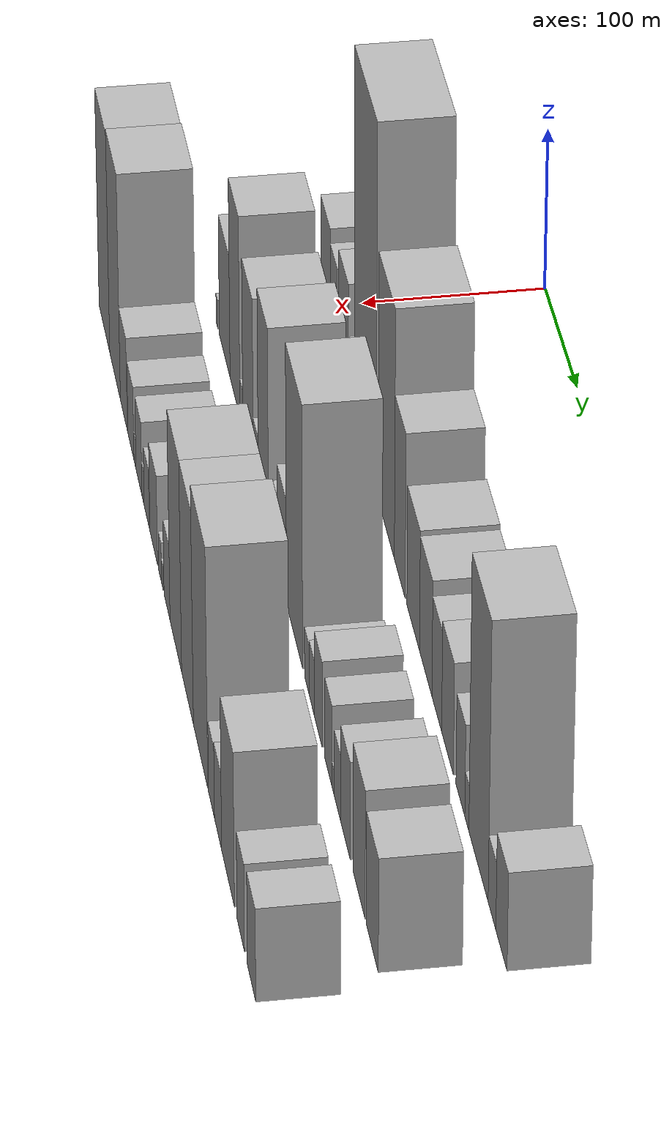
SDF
<sdf version="1.6">
 <world name="default">
  <model name="building_20">
   <static>1</static>
   <pose>100.0000 1.1828 0 0.000000 0.000000 0.000000</pose>
   <link name="link">
    <pose>0 0 30.00 0 0 0</pose>
    <collision name="collision"><geometry><box><size>40.0000 35.6672 60.0000</size></box></geometry></collision>
    <visual name="visual">
     <cast_shadows>0</cast_shadows>
     <geometry><box><size>40.0000 35.6672 60.0000</size></box></geometry>
     <material>
      <script>
       <uri>model://HANNAS_wall/materials/scripts</uri>
       <uri>model://HANNAS_wall/materials/textures</uri>
       <name>vrc/HANNAS_wall</name>
      </script>
     </material>
    </visual>
   </link>
  </model>
  <model name="building_21">
   <static>1</static>
   <pose>100.0000 32.1808 0 0.000000 0.000000 0.000000</pose>
   <link name="link">
    <pose>0 0 25.50 0 0 0</pose>
    <collision name="collision"><geometry><box><size>40.0000 26.3290 51.0000</size></box></geometry></collision>
    <visual name="visual">
     <cast_shadows>0</cast_shadows>
     <geometry><box><size>40.0000 26.3290 51.0000</size></box></geometry>
     <material>
      <script>
       <uri>model://HANNAS_wall/materials/scripts</uri>
       <uri>model://HANNAS_wall/materials/textures</uri>
       <name>vrc/HANNAS_wall</name>
      </script>
     </material>
    </visual>
   </link>
  </model>
  <model name="building_22">
   <static>1</static>
   <pose>100.0000 67.8488 0 0.000000 0.000000 0.000000</pose>
   <link name="link">
    <pose>0 0 33.00 0 0 0</pose>
    <collision name="collision"><geometry><box><size>40.0000 35.0070 66.0000</size></box></geometry></collision>
    <visual name="visual">
     <cast_shadows>0</cast_shadows>
     <geometry><box><size>40.0000 35.0070 66.0000</size></box></geometry>
     <material>
      <script>
       <uri>model://HANNAS_wall/materials/scripts</uri>
       <uri>model://HANNAS_wall/materials/textures</uri>
       <name>vrc/HANNAS_wall</name>
      </script>
     </material>
    </visual>
   </link>
  </model>
  <model name="building_23">
   <static>1</static>
   <pose>100.0000 97.4326 0 0.000000 0.000000 0.000000</pose>
   <link name="link">
    <pose>0 0 18.00 0 0 0</pose>
    <collision name="collision"><geometry><box><size>40.0000 18.1607 36.0000</size></box></geometry></collision>
    <visual name="visual">
     <cast_shadows>0</cast_shadows>
     <geometry><box><size>40.0000 18.1607 36.0000</size></box></geometry>
     <material>
      <script>
       <uri>model://HANNAS_wall/materials/scripts</uri>
       <uri>model://HANNAS_wall/materials/textures</uri>
       <name>vrc/HANNAS_wall</name>
      </script>
     </material>
    </visual>
   </link>
  </model>
  <model name="building_24">
   <static>1</static>
   <pose>100.0000 145.5069 0 0.000000 0.000000 0.000000</pose>
   <link name="link">
    <pose>0 0 111.00 0 0 0</pose>
    <collision name="collision"><geometry><box><size>40.0000 77.9878 222.0000</size></box></geometry></collision>
    <visual name="visual">
     <cast_shadows>0</cast_shadows>
     <geometry><box><size>40.0000 77.9878 222.0000</size></box></geometry>
     <material>
      <script>
       <uri>model://HANNAS_wall/materials/scripts</uri>
       <uri>model://HANNAS_wall/materials/textures</uri>
       <name>vrc/HANNAS_wall</name>
      </script>
     </material>
    </visual>
   </link>
  </model>
  <model name="building_25">
   <static>1</static>
   <pose>100.0000 218.3089 0 0.000000 0.000000 0.000000</pose>
   <link name="link">
    <pose>0 0 75.00 0 0 0</pose>
    <collision name="collision"><geometry><box><size>40.0000 55.6163 150.0000</size></box></geometry></collision>
    <visual name="visual">
     <cast_shadows>0</cast_shadows>
     <geometry><box><size>40.0000 55.6163 150.0000</size></box></geometry>
     <material>
      <script>
       <uri>model://HANNAS_wall/materials/scripts</uri>
       <uri>model://HANNAS_wall/materials/textures</uri>
       <name>vrc/HANNAS_wall</name>
      </script>
     </material>
    </visual>
   </link>
  </model>
  <model name="building_26">
   <static>1</static>
   <pose>100.0000 264.1059 0 0.000000 0.000000 0.000000</pose>
   <link name="link">
    <pose>0 0 49.50 0 0 0</pose>
    <collision name="collision"><geometry><box><size>40.0000 35.9778 99.0000</size></box></geometry></collision>
    <visual name="visual">
     <cast_shadows>0</cast_shadows>
     <geometry><box><size>40.0000 35.9778 99.0000</size></box></geometry>
     <material>
      <script>
       <uri>model://HANNAS_wall/materials/scripts</uri>
       <uri>model://HANNAS_wall/materials/textures</uri>
       <name>vrc/HANNAS_wall</name>
      </script>
     </material>
    </visual>
   </link>
  </model>
  <model name="building_27">
   <static>1</static>
   <pose>100.0000 308.7166 0 0.000000 0.000000 0.000000</pose>
   <link name="link">
    <pose>0 0 36.00 0 0 0</pose>
    <collision name="collision"><geometry><box><size>40.0000 41.2436 72.0000</size></box></geometry></collision>
    <visual name="visual">
     <cast_shadows>0</cast_shadows>
     <geometry><box><size>40.0000 41.2436 72.0000</size></box></geometry>
     <material>
      <script>
       <uri>model://HANNAS_wall/materials/scripts</uri>
       <uri>model://HANNAS_wall/materials/textures</uri>
       <name>vrc/HANNAS_wall</name>
      </script>
     </material>
    </visual>
   </link>
  </model>
  <model name="building_28">
   <static>1</static>
   <pose>100.0000 349.4230 0 0.000000 0.000000 0.000000</pose>
   <link name="link">
    <pose>0 0 34.50 0 0 0</pose>
    <collision name="collision"><geometry><box><size>40.0000 40.1692 69.0000</size></box></geometry></collision>
    <visual name="visual">
     <cast_shadows>0</cast_shadows>
     <geometry><box><size>40.0000 40.1692 69.0000</size></box></geometry>
     <material>
      <script>
       <uri>model://HANNAS_wall/materials/scripts</uri>
       <uri>model://HANNAS_wall/materials/textures</uri>
       <name>vrc/HANNAS_wall</name>
      </script>
     </material>
    </visual>
   </link>
  </model>
  <model name="building_29">
   <static>1</static>
   <pose>100.0000 384.8734 0 0.000000 0.000000 0.000000</pose>
   <link name="link">
    <pose>0 0 30.00 0 0 0</pose>
    <collision name="collision"><geometry><box><size>40.0000 30.7317 60.0000</size></box></geometry></collision>
    <visual name="visual">
     <cast_shadows>0</cast_shadows>
     <geometry><box><size>40.0000 30.7317 60.0000</size></box></geometry>
     <material>
      <script>
       <uri>model://HANNAS_wall/materials/scripts</uri>
       <uri>model://HANNAS_wall/materials/textures</uri>
       <name>vrc/HANNAS_wall</name>
      </script>
     </material>
    </visual>
   </link>
  </model>
  <model name="building_30">
   <static>1</static>
   <pose>100.0000 418.5343 0 0.000000 0.000000 0.000000</pose>
   <link name="link">
    <pose>0 0 33.00 0 0 0</pose>
    <collision name="collision"><geometry><box><size>40.0000 36.5901 66.0000</size></box></geometry></collision>
    <visual name="visual">
     <cast_shadows>0</cast_shadows>
     <geometry><box><size>40.0000 36.5901 66.0000</size></box></geometry>
     <material>
      <script>
       <uri>model://HANNAS_wall/materials/scripts</uri>
       <uri>model://HANNAS_wall/materials/textures</uri>
       <name>vrc/HANNAS_wall</name>
      </script>
     </material>
    </visual>
   </link>
  </model>
  <model name="building_31">
   <static>1</static>
   <pose>100.0000 458.3467 0 0.000000 0.000000 0.000000</pose>
   <link name="link">
    <pose>0 0 27.00 0 0 0</pose>
    <collision name="collision"><geometry><box><size>40.0000 27.0347 54.0000</size></box></geometry></collision>
    <visual name="visual">
     <cast_shadows>0</cast_shadows>
     <geometry><box><size>40.0000 27.0347 54.0000</size></box></geometry>
     <material>
      <script>
       <uri>model://HANNAS_wall/materials/scripts</uri>
       <uri>model://HANNAS_wall/materials/textures</uri>
       <name>vrc/HANNAS_wall</name>
      </script>
     </material>
    </visual>
   </link>
  </model>
  <model name="building_32">
   <static>1</static>
   <pose>100.0000 478.0838 0 0.000000 0.000000 0.000000</pose>
   <link name="link">
    <pose>0 0 13.50 0 0 0</pose>
    <collision name="collision"><geometry><box><size>40.0000 12.4395 27.0000</size></box></geometry></collision>
    <visual name="visual">
     <cast_shadows>0</cast_shadows>
     <geometry><box><size>40.0000 12.4395 27.0000</size></box></geometry>
     <material>
      <script>
       <uri>model://HANNAS_wall/materials/scripts</uri>
       <uri>model://HANNAS_wall/materials/textures</uri>
       <name>vrc/HANNAS_wall</name>
      </script>
     </material>
    </visual>
   </link>
  </model>
  <model name="building_33">
   <static>1</static>
   <pose>100.0000 513.0202 0 0.000000 0.000000 0.000000</pose>
   <link name="link">
    <pose>0 0 81.00 0 0 0</pose>
    <collision name="collision"><geometry><box><size>40.0000 57.4334 162.0000</size></box></geometry></collision>
    <visual name="visual">
     <cast_shadows>0</cast_shadows>
     <geometry><box><size>40.0000 57.4334 162.0000</size></box></geometry>
     <material>
      <script>
       <uri>model://HANNAS_wall/materials/scripts</uri>
       <uri>model://HANNAS_wall/materials/textures</uri>
       <name>vrc/HANNAS_wall</name>
      </script>
     </material>
    </visual>
   </link>
  </model>
  <model name="building_34">
   <static>1</static>
   <pose>100.0000 553.0574 0 0.000000 0.000000 0.000000</pose>
   <link name="link">
    <pose>0 0 19.50 0 0 0</pose>
    <collision name="collision"><geometry><box><size>40.0000 22.6411 39.0000</size></box></geometry></collision>
    <visual name="visual">
     <cast_shadows>0</cast_shadows>
     <geometry><box><size>40.0000 22.6411 39.0000</size></box></geometry>
     <material>
      <script>
       <uri>model://HANNAS_wall/materials/scripts</uri>
       <uri>model://HANNAS_wall/materials/textures</uri>
       <name>vrc/HANNAS_wall</name>
      </script>
     </material>
    </visual>
   </link>
  </model>
  <model name="building_35">
   <static>1</static>
   <pose>100.0000 580.5627 0 0.000000 0.000000 0.000000</pose>
   <link name="link">
    <pose>0 0 28.50 0 0 0</pose>
    <collision name="collision"><geometry><box><size>40.0000 32.3694 57.0000</size></box></geometry></collision>
    <visual name="visual">
     <cast_shadows>0</cast_shadows>
     <geometry><box><size>40.0000 32.3694 57.0000</size></box></geometry>
     <material>
      <script>
       <uri>model://HANNAS_wall/materials/scripts</uri>
       <uri>model://HANNAS_wall/materials/textures</uri>
       <name>vrc/HANNAS_wall</name>
      </script>
     </material>
    </visual>
   </link>
  </model>
  <model name="building_55">
   <static>1</static>
   <pose>160.0000 10.9265 0 0.000000 0.000000 0.000000</pose>
   <link name="link">
    <pose>0 0 9.00 0 0 0</pose>
    <collision name="collision"><geometry><box><size>40.0000 7.2422 18.0000</size></box></geometry></collision>
    <visual name="visual">
     <cast_shadows>0</cast_shadows>
     <geometry><box><size>40.0000 7.2422 18.0000</size></box></geometry>
     <material>
      <script>
       <uri>model://HANNAS_wall/materials/scripts</uri>
       <uri>model://HANNAS_wall/materials/textures</uri>
       <name>vrc/HANNAS_wall</name>
      </script>
     </material>
    </visual>
   </link>
  </model>
  <model name="building_56">
   <static>1</static>
   <pose>160.0000 41.9726 0 0.000000 0.000000 0.000000</pose>
   <link name="link">
    <pose>0 0 37.50 0 0 0</pose>
    <collision name="collision"><geometry><box><size>40.0000 42.8500 75.0000</size></box></geometry></collision>
    <visual name="visual">
     <cast_shadows>0</cast_shadows>
     <geometry><box><size>40.0000 42.8500 75.0000</size></box></geometry>
     <material>
      <script>
       <uri>model://HANNAS_wall/materials/scripts</uri>
       <uri>model://HANNAS_wall/materials/textures</uri>
       <name>vrc/HANNAS_wall</name>
      </script>
     </material>
    </visual>
   </link>
  </model>
  <model name="building_57">
   <static>1</static>
   <pose>160.0000 83.0581 0 0.000000 0.000000 0.000000</pose>
   <link name="link">
    <pose>0 0 61.50 0 0 0</pose>
    <collision name="collision"><geometry><box><size>40.0000 39.3210 123.0000</size></box></geometry></collision>
    <visual name="visual">
     <cast_shadows>0</cast_shadows>
     <geometry><box><size>40.0000 39.3210 123.0000</size></box></geometry>
     <material>
      <script>
       <uri>model://HANNAS_wall/materials/scripts</uri>
       <uri>model://HANNAS_wall/materials/textures</uri>
       <name>vrc/HANNAS_wall</name>
      </script>
     </material>
    </visual>
   </link>
  </model>
  <model name="building_58">
   <static>1</static>
   <pose>160.0000 108.4685 0 0.000000 0.000000 0.000000</pose>
   <link name="link">
    <pose>0 0 12.00 0 0 0</pose>
    <collision name="collision"><geometry><box><size>40.0000 11.4999 24.0000</size></box></geometry></collision>
    <visual name="visual">
     <cast_shadows>0</cast_shadows>
     <geometry><box><size>40.0000 11.4999 24.0000</size></box></geometry>
     <material>
      <script>
       <uri>model://HANNAS_wall/materials/scripts</uri>
       <uri>model://HANNAS_wall/materials/textures</uri>
       <name>vrc/HANNAS_wall</name>
      </script>
     </material>
    </visual>
   </link>
  </model>
  <model name="building_59">
   <static>1</static>
   <pose>160.0000 134.5916 0 0.000000 0.000000 0.000000</pose>
   <link name="link">
    <pose>0 0 52.50 0 0 0</pose>
    <collision name="collision"><geometry><box><size>40.0000 40.7462 105.0000</size></box></geometry></collision>
    <visual name="visual">
     <cast_shadows>0</cast_shadows>
     <geometry><box><size>40.0000 40.7462 105.0000</size></box></geometry>
     <material>
      <script>
       <uri>model://HANNAS_wall/materials/scripts</uri>
       <uri>model://HANNAS_wall/materials/textures</uri>
       <name>vrc/HANNAS_wall</name>
      </script>
     </material>
    </visual>
   </link>
  </model>
  <model name="building_60">
   <static>1</static>
   <pose>160.0000 164.3104 0 0.000000 0.000000 0.000000</pose>
   <link name="link">
    <pose>0 0 16.50 0 0 0</pose>
    <collision name="collision"><geometry><box><size>40.0000 18.6914 33.0000</size></box></geometry></collision>
    <visual name="visual">
     <cast_shadows>0</cast_shadows>
     <geometry><box><size>40.0000 18.6914 33.0000</size></box></geometry>
     <material>
      <script>
       <uri>model://HANNAS_wall/materials/scripts</uri>
       <uri>model://HANNAS_wall/materials/textures</uri>
       <name>vrc/HANNAS_wall</name>
      </script>
     </material>
    </visual>
   </link>
  </model>
  <model name="building_61">
   <static>1</static>
   <pose>160.0000 192.9770 0 0.000000 0.000000 0.000000</pose>
   <link name="link">
    <pose>0 0 61.50 0 0 0</pose>
    <collision name="collision"><geometry><box><size>40.0000 38.6419 123.0000</size></box></geometry></collision>
    <visual name="visual">
     <cast_shadows>0</cast_shadows>
     <geometry><box><size>40.0000 38.6419 123.0000</size></box></geometry>
     <material>
      <script>
       <uri>model://HANNAS_wall/materials/scripts</uri>
       <uri>model://HANNAS_wall/materials/textures</uri>
       <name>vrc/HANNAS_wall</name>
      </script>
     </material>
    </visual>
   </link>
  </model>
  <model name="building_62">
   <static>1</static>
   <pose>160.0000 218.0030 0 0.000000 0.000000 0.000000</pose>
   <link name="link">
    <pose>0 0 13.50 0 0 0</pose>
    <collision name="collision"><geometry><box><size>40.0000 11.4101 27.0000</size></box></geometry></collision>
    <visual name="visual">
     <cast_shadows>0</cast_shadows>
     <geometry><box><size>40.0000 11.4101 27.0000</size></box></geometry>
     <material>
      <script>
       <uri>model://HANNAS_wall/materials/scripts</uri>
       <uri>model://HANNAS_wall/materials/textures</uri>
       <name>vrc/HANNAS_wall</name>
      </script>
     </material>
    </visual>
   </link>
  </model>
  <model name="building_63">
   <static>1</static>
   <pose>160.0000 234.6212 0 0.000000 0.000000 0.000000</pose>
   <link name="link">
    <pose>0 0 19.50 0 0 0</pose>
    <collision name="collision"><geometry><box><size>40.0000 21.8263 39.0000</size></box></geometry></collision>
    <visual name="visual">
     <cast_shadows>0</cast_shadows>
     <geometry><box><size>40.0000 21.8263 39.0000</size></box></geometry>
     <material>
      <script>
       <uri>model://HANNAS_wall/materials/scripts</uri>
       <uri>model://HANNAS_wall/materials/textures</uri>
       <name>vrc/HANNAS_wall</name>
      </script>
     </material>
    </visual>
   </link>
  </model>
  <model name="building_64">
   <static>1</static>
   <pose>160.0000 262.1242 0 0.000000 0.000000 0.000000</pose>
   <link name="link">
    <pose>0 0 31.50 0 0 0</pose>
    <collision name="collision"><geometry><box><size>40.0000 33.1797 63.0000</size></box></geometry></collision>
    <visual name="visual">
     <cast_shadows>0</cast_shadows>
     <geometry><box><size>40.0000 33.1797 63.0000</size></box></geometry>
     <material>
      <script>
       <uri>model://HANNAS_wall/materials/scripts</uri>
       <uri>model://HANNAS_wall/materials/textures</uri>
       <name>vrc/HANNAS_wall</name>
      </script>
     </material>
    </visual>
   </link>
  </model>
  <model name="building_65">
   <static>1</static>
   <pose>160.0000 307.4995 0 0.000000 0.000000 0.000000</pose>
   <link name="link">
    <pose>0 0 78.00 0 0 0</pose>
    <collision name="collision"><geometry><box><size>40.0000 57.5708 156.0000</size></box></geometry></collision>
    <visual name="visual">
     <cast_shadows>0</cast_shadows>
     <geometry><box><size>40.0000 57.5708 156.0000</size></box></geometry>
     <material>
      <script>
       <uri>model://HANNAS_wall/materials/scripts</uri>
       <uri>model://HANNAS_wall/materials/textures</uri>
       <name>vrc/HANNAS_wall</name>
      </script>
     </material>
    </visual>
   </link>
  </model>
  <model name="building_66">
   <static>1</static>
   <pose>160.0000 351.3221 0 0.000000 0.000000 0.000000</pose>
   <link name="link">
    <pose>0 0 15.00 0 0 0</pose>
    <collision name="collision"><geometry><box><size>40.0000 16.0744 30.0000</size></box></geometry></collision>
    <visual name="visual">
     <cast_shadows>0</cast_shadows>
     <geometry><box><size>40.0000 16.0744 30.0000</size></box></geometry>
     <material>
      <script>
       <uri>model://HANNAS_wall/materials/scripts</uri>
       <uri>model://HANNAS_wall/materials/textures</uri>
       <name>vrc/HANNAS_wall</name>
      </script>
     </material>
    </visual>
   </link>
  </model>
  <model name="building_67">
   <static>1</static>
   <pose>160.0000 368.9532 0 0.000000 0.000000 0.000000</pose>
   <link name="link">
    <pose>0 0 16.50 0 0 0</pose>
    <collision name="collision"><geometry><box><size>40.0000 19.1877 33.0000</size></box></geometry></collision>
    <visual name="visual">
     <cast_shadows>0</cast_shadows>
     <geometry><box><size>40.0000 19.1877 33.0000</size></box></geometry>
     <material>
      <script>
       <uri>model://HANNAS_wall/materials/scripts</uri>
       <uri>model://HANNAS_wall/materials/textures</uri>
       <name>vrc/HANNAS_wall</name>
      </script>
     </material>
    </visual>
   </link>
  </model>
  <model name="building_68">
   <static>1</static>
   <pose>160.0000 391.6664 0 0.000000 0.000000 0.000000</pose>
   <link name="link">
    <pose>0 0 25.50 0 0 0</pose>
    <collision name="collision"><geometry><box><size>40.0000 26.2389 51.0000</size></box></geometry></collision>
    <visual name="visual">
     <cast_shadows>0</cast_shadows>
     <geometry><box><size>40.0000 26.2389 51.0000</size></box></geometry>
     <material>
      <script>
       <uri>model://HANNAS_wall/materials/scripts</uri>
       <uri>model://HANNAS_wall/materials/textures</uri>
       <name>vrc/HANNAS_wall</name>
      </script>
     </material>
    </visual>
   </link>
  </model>
  <model name="building_69">
   <static>1</static>
   <pose>160.0000 426.0235 0 0.000000 0.000000 0.000000</pose>
   <link name="link">
    <pose>0 0 24.00 0 0 0</pose>
    <collision name="collision"><geometry><box><size>40.0000 24.4752 48.0000</size></box></geometry></collision>
    <visual name="visual">
     <cast_shadows>0</cast_shadows>
     <geometry><box><size>40.0000 24.4752 48.0000</size></box></geometry>
     <material>
      <script>
       <uri>model://HANNAS_wall/materials/scripts</uri>
       <uri>model://HANNAS_wall/materials/textures</uri>
       <name>vrc/HANNAS_wall</name>
      </script>
     </material>
    </visual>
   </link>
  </model>
  <model name="building_70">
   <static>1</static>
   <pose>160.0000 441.8952 0 0.000000 0.000000 0.000000</pose>
   <link name="link">
    <pose>0 0 7.50 0 0 0</pose>
    <collision name="collision"><geometry><box><size>40.0000 7.2681 15.0000</size></box></geometry></collision>
    <visual name="visual">
     <cast_shadows>0</cast_shadows>
     <geometry><box><size>40.0000 7.2681 15.0000</size></box></geometry>
     <material>
      <script>
       <uri>model://HANNAS_wall/materials/scripts</uri>
       <uri>model://HANNAS_wall/materials/textures</uri>
       <name>vrc/HANNAS_wall</name>
      </script>
     </material>
    </visual>
   </link>
  </model>
  <model name="building_71">
   <static>1</static>
   <pose>160.0000 456.3640 0 0.000000 0.000000 0.000000</pose>
   <link name="link">
    <pose>0 0 19.50 0 0 0</pose>
    <collision name="collision"><geometry><box><size>40.0000 21.6695 39.0000</size></box></geometry></collision>
    <visual name="visual">
     <cast_shadows>0</cast_shadows>
     <geometry><box><size>40.0000 21.6695 39.0000</size></box></geometry>
     <material>
      <script>
       <uri>model://HANNAS_wall/materials/scripts</uri>
       <uri>model://HANNAS_wall/materials/textures</uri>
       <name>vrc/HANNAS_wall</name>
      </script>
     </material>
    </visual>
   </link>
  </model>
  <model name="building_72">
   <static>1</static>
   <pose>160.0000 482.9444 0 0.000000 0.000000 0.000000</pose>
   <link name="link">
    <pose>0 0 28.50 0 0 0</pose>
    <collision name="collision"><geometry><box><size>40.0000 31.4913 57.0000</size></box></geometry></collision>
    <visual name="visual">
     <cast_shadows>0</cast_shadows>
     <geometry><box><size>40.0000 31.4913 57.0000</size></box></geometry>
     <material>
      <script>
       <uri>model://HANNAS_wall/materials/scripts</uri>
       <uri>model://HANNAS_wall/materials/textures</uri>
       <name>vrc/HANNAS_wall</name>
      </script>
     </material>
    </visual>
   </link>
  </model>
  <model name="building_73">
   <static>1</static>
   <pose>160.0000 527.4211 0 0.000000 0.000000 0.000000</pose>
   <link name="link">
    <pose>0 0 37.50 0 0 0</pose>
    <collision name="collision"><geometry><box><size>40.0000 39.4621 75.0000</size></box></geometry></collision>
    <visual name="visual">
     <cast_shadows>0</cast_shadows>
     <geometry><box><size>40.0000 39.4621 75.0000</size></box></geometry>
     <material>
      <script>
       <uri>model://HANNAS_wall/materials/scripts</uri>
       <uri>model://HANNAS_wall/materials/textures</uri>
       <name>vrc/HANNAS_wall</name>
      </script>
     </material>
    </visual>
   </link>
  </model>
  <model name="building_74">
   <static>1</static>
   <pose>160.0000 570.1634 0 0.000000 0.000000 0.000000</pose>
   <link name="link">
    <pose>0 0 33.00 0 0 0</pose>
    <collision name="collision"><geometry><box><size>40.0000 38.0226 66.0000</size></box></geometry></collision>
    <visual name="visual">
     <cast_shadows>0</cast_shadows>
     <geometry><box><size>40.0000 38.0226 66.0000</size></box></geometry>
     <material>
      <script>
       <uri>model://HANNAS_wall/materials/scripts</uri>
       <uri>model://HANNAS_wall/materials/textures</uri>
       <name>vrc/HANNAS_wall</name>
      </script>
     </material>
    </visual>
   </link>
  </model>
  <model name="building_92">
   <static>1</static>
   <pose>220.0000 5.7398 0 0.000000 0.000000 0.000000</pose>
   <link name="link">
    <pose>0 0 67.50 0 0 0</pose>
    <collision name="collision"><geometry><box><size>40.0000 48.0172 135.0000</size></box></geometry></collision>
    <visual name="visual">
     <cast_shadows>0</cast_shadows>
     <geometry><box><size>40.0000 48.0172 135.0000</size></box></geometry>
     <material>
      <script>
       <uri>model://HANNAS_wall/materials/scripts</uri>
       <uri>model://HANNAS_wall/materials/textures</uri>
       <name>vrc/HANNAS_wall</name>
      </script>
     </material>
    </visual>
   </link>
  </model>
  <model name="building_93">
   <static>1</static>
   <pose>220.0000 53.1692 0 0.000000 0.000000 0.000000</pose>
   <link name="link">
    <pose>0 0 69.00 0 0 0</pose>
    <collision name="collision"><geometry><box><size>40.0000 46.8416 138.0000</size></box></geometry></collision>
    <visual name="visual">
     <cast_shadows>0</cast_shadows>
     <geometry><box><size>40.0000 46.8416 138.0000</size></box></geometry>
     <material>
      <script>
       <uri>model://HANNAS_wall/materials/scripts</uri>
       <uri>model://HANNAS_wall/materials/textures</uri>
       <name>vrc/HANNAS_wall</name>
      </script>
     </material>
    </visual>
   </link>
  </model>
  <model name="building_94">
   <static>1</static>
   <pose>220.0000 91.7708 0 0.000000 0.000000 0.000000</pose>
   <link name="link">
    <pose>0 0 28.50 0 0 0</pose>
    <collision name="collision"><geometry><box><size>40.0000 30.3617 57.0000</size></box></geometry></collision>
    <visual name="visual">
     <cast_shadows>0</cast_shadows>
     <geometry><box><size>40.0000 30.3617 57.0000</size></box></geometry>
     <material>
      <script>
       <uri>model://HANNAS_wall/materials/scripts</uri>
       <uri>model://HANNAS_wall/materials/textures</uri>
       <name>vrc/HANNAS_wall</name>
      </script>
     </material>
    </visual>
   </link>
  </model>
  <model name="building_95">
   <static>1</static>
   <pose>220.0000 122.8202 0 0.000000 0.000000 0.000000</pose>
   <link name="link">
    <pose>0 0 22.50 0 0 0</pose>
    <collision name="collision"><geometry><box><size>40.0000 25.7371 45.0000</size></box></geometry></collision>
    <visual name="visual">
     <cast_shadows>0</cast_shadows>
     <geometry><box><size>40.0000 25.7371 45.0000</size></box></geometry>
     <material>
      <script>
       <uri>model://HANNAS_wall/materials/scripts</uri>
       <uri>model://HANNAS_wall/materials/textures</uri>
       <name>vrc/HANNAS_wall</name>
      </script>
     </material>
    </visual>
   </link>
  </model>
  <model name="building_96">
   <static>1</static>
   <pose>220.0000 139.9134 0 0.000000 0.000000 0.000000</pose>
   <link name="link">
    <pose>0 0 9.00 0 0 0</pose>
    <collision name="collision"><geometry><box><size>40.0000 8.4492 18.0000</size></box></geometry></collision>
    <visual name="visual">
     <cast_shadows>0</cast_shadows>
     <geometry><box><size>40.0000 8.4492 18.0000</size></box></geometry>
     <material>
      <script>
       <uri>model://HANNAS_wall/materials/scripts</uri>
       <uri>model://HANNAS_wall/materials/textures</uri>
       <name>vrc/HANNAS_wall</name>
      </script>
     </material>
    </visual>
   </link>
  </model>
  <model name="building_97">
   <static>1</static>
   <pose>220.0000 156.8488 0 0.000000 0.000000 0.000000</pose>
   <link name="link">
    <pose>0 0 22.50 0 0 0</pose>
    <collision name="collision"><geometry><box><size>40.0000 25.4216 45.0000</size></box></geometry></collision>
    <visual name="visual">
     <cast_shadows>0</cast_shadows>
     <geometry><box><size>40.0000 25.4216 45.0000</size></box></geometry>
     <material>
      <script>
       <uri>model://HANNAS_wall/materials/scripts</uri>
       <uri>model://HANNAS_wall/materials/textures</uri>
       <name>vrc/HANNAS_wall</name>
      </script>
     </material>
    </visual>
   </link>
  </model>
  <model name="building_98">
   <static>1</static>
   <pose>220.0000 174.1056 0 0.000000 0.000000 0.000000</pose>
   <link name="link">
    <pose>0 0 10.50 0 0 0</pose>
    <collision name="collision"><geometry><box><size>40.0000 9.0919 21.0000</size></box></geometry></collision>
    <visual name="visual">
     <cast_shadows>0</cast_shadows>
     <geometry><box><size>40.0000 9.0919 21.0000</size></box></geometry>
     <material>
      <script>
       <uri>model://HANNAS_wall/materials/scripts</uri>
       <uri>model://HANNAS_wall/materials/textures</uri>
       <name>vrc/HANNAS_wall</name>
      </script>
     </material>
    </visual>
   </link>
  </model>
  <model name="building_99">
   <static>1</static>
   <pose>220.0000 189.2247 0 0.000000 0.000000 0.000000</pose>
   <link name="link">
    <pose>0 0 18.00 0 0 0</pose>
    <collision name="collision"><geometry><box><size>40.0000 21.1463 36.0000</size></box></geometry></collision>
    <visual name="visual">
     <cast_shadows>0</cast_shadows>
     <geometry><box><size>40.0000 21.1463 36.0000</size></box></geometry>
     <material>
      <script>
       <uri>model://HANNAS_wall/materials/scripts</uri>
       <uri>model://HANNAS_wall/materials/textures</uri>
       <name>vrc/HANNAS_wall</name>
      </script>
     </material>
    </visual>
   </link>
  </model>
  <model name="building_100">
   <static>1</static>
   <pose>220.0000 218.5179 0 0.000000 0.000000 0.000000</pose>
   <link name="link">
    <pose>0 0 27.00 0 0 0</pose>
    <collision name="collision"><geometry><box><size>40.0000 31.4401 54.0000</size></box></geometry></collision>
    <visual name="visual">
     <cast_shadows>0</cast_shadows>
     <geometry><box><size>40.0000 31.4401 54.0000</size></box></geometry>
     <material>
      <script>
       <uri>model://HANNAS_wall/materials/scripts</uri>
       <uri>model://HANNAS_wall/materials/textures</uri>
       <name>vrc/HANNAS_wall</name>
      </script>
     </material>
    </visual>
   </link>
  </model>
  <model name="building_101">
   <static>1</static>
   <pose>220.0000 244.7048 0 0.000000 0.000000 0.000000</pose>
   <link name="link">
    <pose>0 0 12.00 0 0 0</pose>
    <collision name="collision"><geometry><box><size>40.0000 10.9338 24.0000</size></box></geometry></collision>
    <visual name="visual">
     <cast_shadows>0</cast_shadows>
     <geometry><box><size>40.0000 10.9338 24.0000</size></box></geometry>
     <material>
      <script>
       <uri>model://HANNAS_wall/materials/scripts</uri>
       <uri>model://HANNAS_wall/materials/textures</uri>
       <name>vrc/HANNAS_wall</name>
      </script>
     </material>
    </visual>
   </link>
  </model>
  <model name="building_102">
   <static>1</static>
   <pose>220.0000 253.8922 0 0.000000 0.000000 0.000000</pose>
   <link name="link">
    <pose>0 0 7.50 0 0 0</pose>
    <collision name="collision"><geometry><box><size>40.0000 7.4410 15.0000</size></box></geometry></collision>
    <visual name="visual">
     <cast_shadows>0</cast_shadows>
     <geometry><box><size>40.0000 7.4410 15.0000</size></box></geometry>
     <material>
      <script>
       <uri>model://HANNAS_wall/materials/scripts</uri>
       <uri>model://HANNAS_wall/materials/textures</uri>
       <name>vrc/HANNAS_wall</name>
      </script>
     </material>
    </visual>
   </link>
  </model>
  <model name="building_103">
   <static>1</static>
   <pose>220.0000 272.6428 0 0.000000 0.000000 0.000000</pose>
   <link name="link">
    <pose>0 0 22.50 0 0 0</pose>
    <collision name="collision"><geometry><box><size>40.0000 24.0602 45.0000</size></box></geometry></collision>
    <visual name="visual">
     <cast_shadows>0</cast_shadows>
     <geometry><box><size>40.0000 24.0602 45.0000</size></box></geometry>
     <material>
      <script>
       <uri>model://HANNAS_wall/materials/scripts</uri>
       <uri>model://HANNAS_wall/materials/textures</uri>
       <name>vrc/HANNAS_wall</name>
      </script>
     </material>
    </visual>
   </link>
  </model>
  <model name="building_104">
   <static>1</static>
   <pose>220.0000 307.6339 0 0.000000 0.000000 0.000000</pose>
   <link name="link">
    <pose>0 0 63.00 0 0 0</pose>
    <collision name="collision"><geometry><box><size>40.0000 45.9219 126.0000</size></box></geometry></collision>
    <visual name="visual">
     <cast_shadows>0</cast_shadows>
     <geometry><box><size>40.0000 45.9219 126.0000</size></box></geometry>
     <material>
      <script>
       <uri>model://HANNAS_wall/materials/scripts</uri>
       <uri>model://HANNAS_wall/materials/textures</uri>
       <name>vrc/HANNAS_wall</name>
      </script>
     </material>
    </visual>
   </link>
  </model>
  <model name="building_105">
   <static>1</static>
   <pose>220.0000 353.5032 0 0.000000 0.000000 0.000000</pose>
   <link name="link">
    <pose>0 0 63.00 0 0 0</pose>
    <collision name="collision"><geometry><box><size>40.0000 45.8167 126.0000</size></box></geometry></collision>
    <visual name="visual">
     <cast_shadows>0</cast_shadows>
     <geometry><box><size>40.0000 45.8167 126.0000</size></box></geometry>
     <material>
      <script>
       <uri>model://HANNAS_wall/materials/scripts</uri>
       <uri>model://HANNAS_wall/materials/textures</uri>
       <name>vrc/HANNAS_wall</name>
      </script>
     </material>
    </visual>
   </link>
  </model>
  <model name="building_106">
   <static>1</static>
   <pose>220.0000 403.5650 0 0.000000 0.000000 0.000000</pose>
   <link name="link">
    <pose>0 0 70.50 0 0 0</pose>
    <collision name="collision"><geometry><box><size>40.0000 54.3070 141.0000</size></box></geometry></collision>
    <visual name="visual">
     <cast_shadows>0</cast_shadows>
     <geometry><box><size>40.0000 54.3070 141.0000</size></box></geometry>
     <material>
      <script>
       <uri>model://HANNAS_wall/materials/scripts</uri>
       <uri>model://HANNAS_wall/materials/textures</uri>
       <name>vrc/HANNAS_wall</name>
      </script>
     </material>
    </visual>
   </link>
  </model>
  <model name="building_107">
   <static>1</static>
   <pose>220.0000 444.7820 0 0.000000 0.000000 0.000000</pose>
   <link name="link">
    <pose>0 0 21.00 0 0 0</pose>
    <collision name="collision"><geometry><box><size>40.0000 22.1270 42.0000</size></box></geometry></collision>
    <visual name="visual">
     <cast_shadows>0</cast_shadows>
     <geometry><box><size>40.0000 22.1270 42.0000</size></box></geometry>
     <material>
      <script>
       <uri>model://HANNAS_wall/materials/scripts</uri>
       <uri>model://HANNAS_wall/materials/textures</uri>
       <name>vrc/HANNAS_wall</name>
      </script>
     </material>
    </visual>
   </link>
  </model>
  <model name="building_108">
   <static>1</static>
   <pose>220.0000 468.9715 0 0.000000 0.000000 0.000000</pose>
   <link name="link">
    <pose>0 0 22.50 0 0 0</pose>
    <collision name="collision"><geometry><box><size>40.0000 26.2519 45.0000</size></box></geometry></collision>
    <visual name="visual">
     <cast_shadows>0</cast_shadows>
     <geometry><box><size>40.0000 26.2519 45.0000</size></box></geometry>
     <material>
      <script>
       <uri>model://HANNAS_wall/materials/scripts</uri>
       <uri>model://HANNAS_wall/materials/textures</uri>
       <name>vrc/HANNAS_wall</name>
      </script>
     </material>
    </visual>
   </link>
  </model>
  <model name="building_109">
   <static>1</static>
   <pose>220.0000 505.2862 0 0.000000 0.000000 0.000000</pose>
   <link name="link">
    <pose>0 0 45.00 0 0 0</pose>
    <collision name="collision"><geometry><box><size>40.0000 46.3774 90.0000</size></box></geometry></collision>
    <visual name="visual">
     <cast_shadows>0</cast_shadows>
     <geometry><box><size>40.0000 46.3774 90.0000</size></box></geometry>
     <material>
      <script>
       <uri>model://HANNAS_wall/materials/scripts</uri>
       <uri>model://HANNAS_wall/materials/textures</uri>
       <name>vrc/HANNAS_wall</name>
      </script>
     </material>
    </visual>
   </link>
  </model>
  <model name="building_110">
   <static>1</static>
   <pose>220.0000 550.8029 0 0.000000 0.000000 0.000000</pose>
   <link name="link">
    <pose>0 0 25.50 0 0 0</pose>
    <collision name="collision"><geometry><box><size>40.0000 26.6560 51.0000</size></box></geometry></collision>
    <visual name="visual">
     <cast_shadows>0</cast_shadows>
     <geometry><box><size>40.0000 26.6560 51.0000</size></box></geometry>
     <material>
      <script>
       <uri>model://HANNAS_wall/materials/scripts</uri>
       <uri>model://HANNAS_wall/materials/textures</uri>
       <name>vrc/HANNAS_wall</name>
      </script>
     </material>
    </visual>
   </link>
  </model>
  <model name="building_111">
   <static>1</static>
   <pose>220.0000 588.7799 0 0.000000 0.000000 0.000000</pose>
   <link name="link">
    <pose>0 0 27.00 0 0 0</pose>
    <collision name="collision"><geometry><box><size>40.0000 29.2980 54.0000</size></box></geometry></collision>
    <visual name="visual">
     <cast_shadows>0</cast_shadows>
     <geometry><box><size>40.0000 29.2980 54.0000</size></box></geometry>
     <material>
      <script>
       <uri>model://HANNAS_wall/materials/scripts</uri>
       <uri>model://HANNAS_wall/materials/textures</uri>
       <name>vrc/HANNAS_wall</name>
      </script>
     </material>
    </visual>
   </link>
  </model>
 </world>
</sdf>
